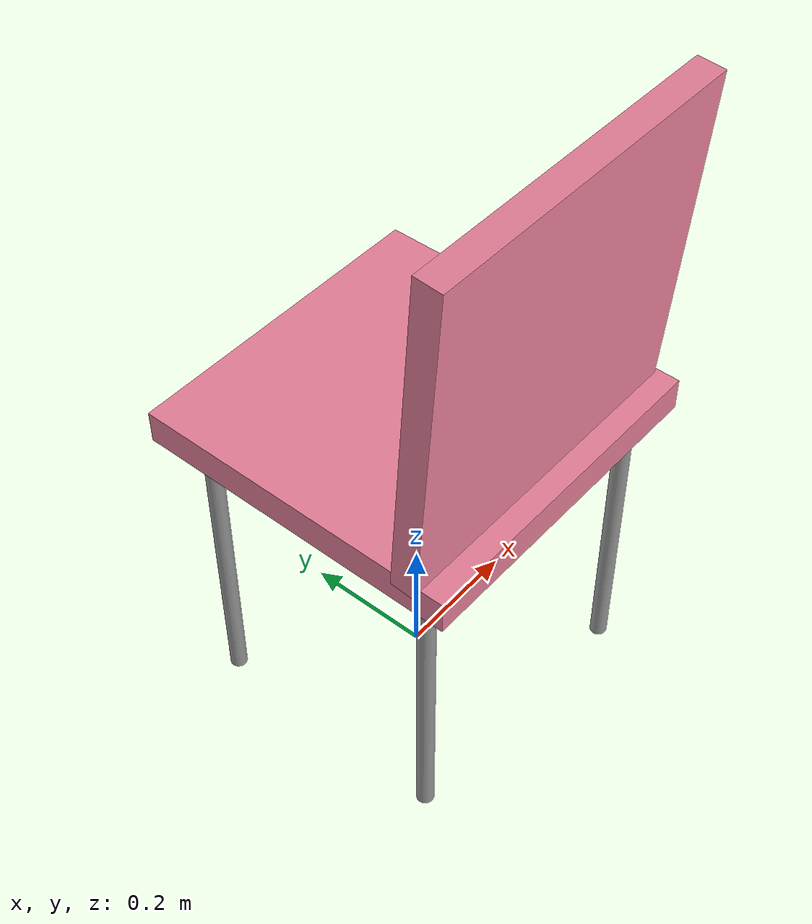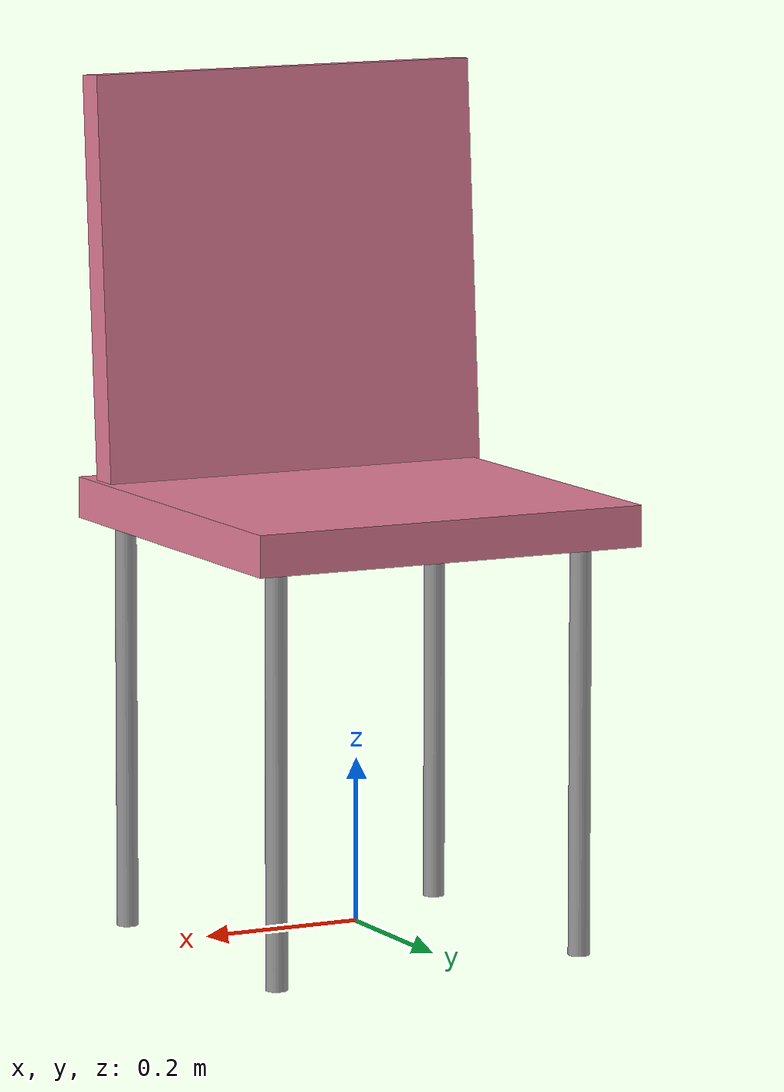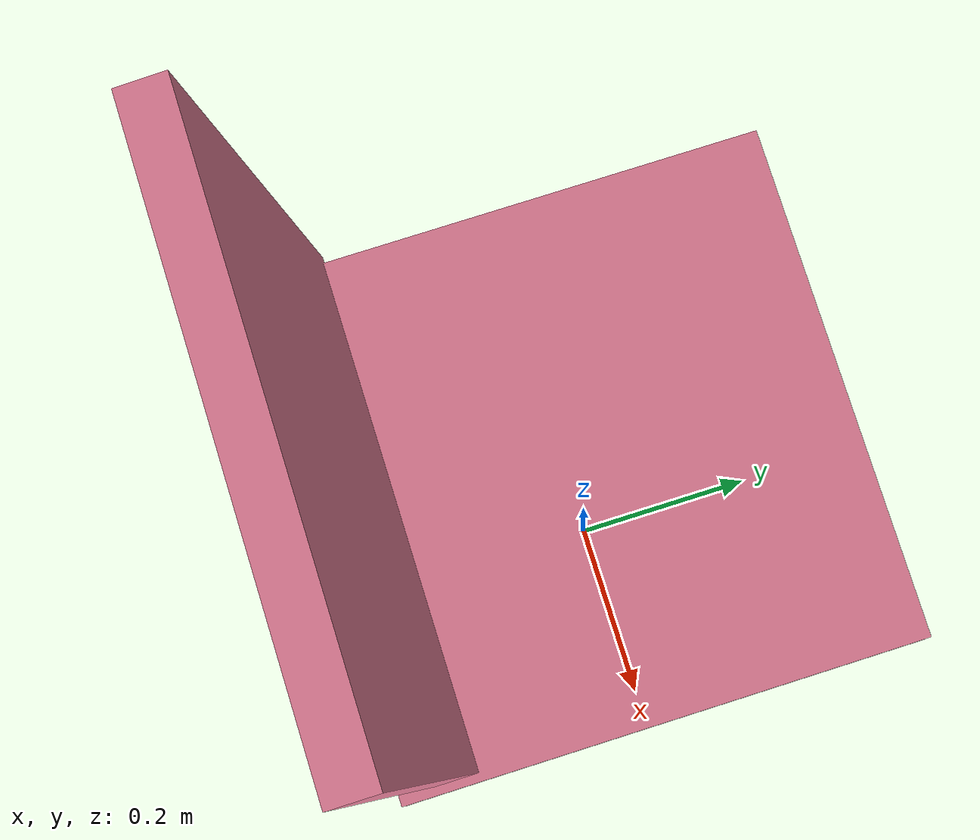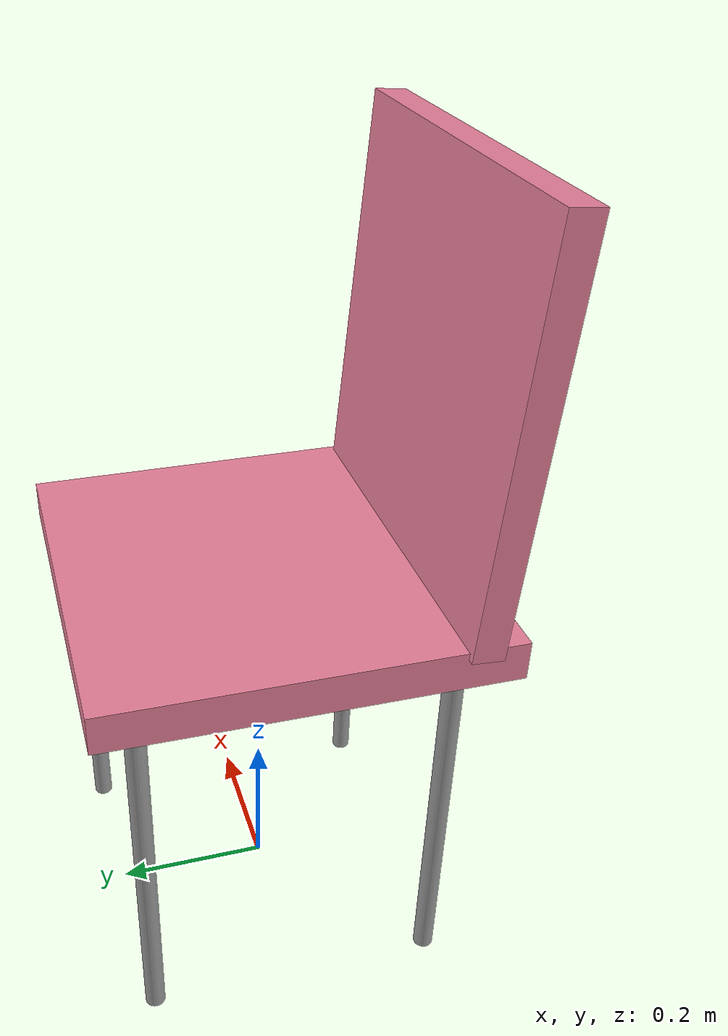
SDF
<?xml version='1.0'?>
<sdf version='1.7'>
  <model name='my_chair'>
    <link name='link'>
      <inertial>
        <mass>1</mass>
        <inertia>
          <ixx>0.166667</ixx>
          <ixy>0</ixy>
          <ixz>0</ixz>
          <iyy>0.166667</iyy>
          <iyz>0</iyz>
          <izz>0.166667</izz>
        </inertia>
        <pose>0 0 0 0 -0 0</pose>
      </inertial>
      <self_collide>0</self_collide>
      <enable_wind>0</enable_wind>
      <kinematic>0</kinematic>
      <pose>0 0 0 -0 -0 -0</pose>
      <gravity>0</gravity>
      <visual name='visual'>
        <geometry>
          <box>
            <size>0.5 0.5 0.05</size>
          </box>
        </geometry>
        <material>
          <script>
            <name>Gazebo/Grey</name>
            <uri>file://media/materials/scripts/gazebo.material</uri>
          </script>
          <shader type='pixel'>
            <normal_map>__default__</normal_map>
          </shader>
          <ambient>0.9 0.5 0.6 1</ambient>
          <diffuse>0.9 0.5 0.6 1</diffuse>
          <specular>0.01 0.01 0.01 1</specular>
          <emissive>0 0 0 1</emissive>
        </material>
        <pose>0 0 0.5 0 -0 0</pose>
        <transparency>0</transparency>
        <cast_shadows>1</cast_shadows>
      </visual>
      <collision name='collision'>
        <laser_retro>0</laser_retro>
        <max_contacts>10</max_contacts>
        <pose>0 0 0.5 0 -0 0</pose>
        <geometry>
          <box>
            <size>0.5 0.5 0.05</size>
          </box>
        </geometry>
        <surface>
          <friction>
            <ode>
              <mu>1</mu>
              <mu2>1</mu2>
              <fdir1>0 0 0</fdir1>
              <slip1>0</slip1>
              <slip2>0</slip2>
            </ode>
            <torsional>
              <coefficient>1</coefficient>
              <patch_radius>0</patch_radius>
              <surface_radius>0</surface_radius>
              <use_patch_radius>1</use_patch_radius>
              <ode>
                <slip>0</slip>
              </ode>
            </torsional>
          </friction>
          <bounce>
            <restitution_coefficient>0</restitution_coefficient>
            <threshold>1e+06</threshold>
          </bounce>
          <contact>
            <collide_without_contact>0</collide_without_contact>
            <collide_without_contact_bitmask>1</collide_without_contact_bitmask>
            <collide_bitmask>1</collide_bitmask>
            <ode>
              <soft_cfm>0</soft_cfm>
              <soft_erp>0.2</soft_erp>
              <kp>1e+13</kp>
              <kd>1</kd>
              <max_vel>0.01</max_vel>
              <min_depth>0</min_depth>
            </ode>
            <bullet>
              <split_impulse>1</split_impulse>
              <split_impulse_penetration_threshold>-0.01</split_impulse_penetration_threshold>
              <soft_cfm>0</soft_cfm>
              <soft_erp>0.2</soft_erp>
              <kp>1e+13</kp>
              <kd>1</kd>
            </bullet>
          </contact>
        </surface>
      </collision>
    </link>
    <link name='link_0'>
      <inertial>
        <mass>1</mass>
        <inertia>
          <ixx>0.145833</ixx>
          <ixy>0</ixy>
          <ixz>0</ixz>
          <iyy>0.145833</iyy>
          <iyz>0</iyz>
          <izz>0.125</izz>
        </inertia>
        <pose>0 0 0 0 -0 0</pose>
      </inertial>
      <pose>-0.200315 -0.184767 -0.272701 -0 -0 -0</pose>
      <gravity>0</gravity>
      <self_collide>0</self_collide>
      <kinematic>0</kinematic>
      <enable_wind>0</enable_wind>
      <visual name='visual'>
        <pose>0 0 0.5 0 -0 0</pose>
        <geometry>
          <cylinder>
            <radius>0.013</radius>
            <length>0.5</length>
          </cylinder>
        </geometry>
        <material>
          <lighting>1</lighting>
          <script>
            <uri>file://media/materials/scripts/gazebo.material</uri>
            <name>Gazebo/Grey</name>
          </script>
          <shader type='pixel'>
            <normal_map>__default__</normal_map>
          </shader>
          <ambient>0.3 0.3 0.3 1</ambient>
          <diffuse>0.7 0.7 0.7 1</diffuse>
          <specular>0.01 0.01 0.01 1</specular>
          <emissive>0 0 0 1</emissive>
        </material>
        <transparency>0</transparency>
        <cast_shadows>1</cast_shadows>
      </visual>
      <collision name='collision'>
        <laser_retro>0</laser_retro>
        <max_contacts>10</max_contacts>
        <pose>0 0 0.5 0 -0 0</pose>
        <geometry>
          <cylinder>
            <radius>0.013</radius>
            <length>0.5</length>
          </cylinder>
        </geometry>
        <surface>
          <friction>
            <ode>
              <mu>1</mu>
              <mu2>1</mu2>
              <fdir1>0 0 0</fdir1>
              <slip1>0</slip1>
              <slip2>0</slip2>
            </ode>
            <torsional>
              <coefficient>1</coefficient>
              <patch_radius>0</patch_radius>
              <surface_radius>0</surface_radius>
              <use_patch_radius>1</use_patch_radius>
              <ode>
                <slip>0</slip>
              </ode>
            </torsional>
          </friction>
          <bounce>
            <restitution_coefficient>0</restitution_coefficient>
            <threshold>1e+06</threshold>
          </bounce>
          <contact>
            <collide_without_contact>0</collide_without_contact>
            <collide_without_contact_bitmask>1</collide_without_contact_bitmask>
            <collide_bitmask>1</collide_bitmask>
            <ode>
              <soft_cfm>0</soft_cfm>
              <soft_erp>0.2</soft_erp>
              <kp>1e+13</kp>
              <kd>1</kd>
              <max_vel>0.01</max_vel>
              <min_depth>0</min_depth>
            </ode>
            <bullet>
              <split_impulse>1</split_impulse>
              <split_impulse_penetration_threshold>-0.01</split_impulse_penetration_threshold>
              <soft_cfm>0</soft_cfm>
              <soft_erp>0.2</soft_erp>
              <kp>1e+13</kp>
              <kd>1</kd>
            </bullet>
          </contact>
        </surface>
      </collision>
    </link>
    <link name='link_0_clone'>
      <inertial>
        <mass>1</mass>
        <inertia>
          <ixx>0.145833</ixx>
          <ixy>0</ixy>
          <ixz>0</ixz>
          <iyy>0.145833</iyy>
          <iyz>0</iyz>
          <izz>0.125</izz>
        </inertia>
        <pose>0 0 0 0 -0 0</pose>
      </inertial>
      <pose>-0.198839 0.194466 -0.272701 -0 -0 -0</pose>
      <gravity>0</gravity>
      <self_collide>0</self_collide>
      <kinematic>0</kinematic>
      <enable_wind>0</enable_wind>
      <visual name='visual'>
        <pose>0 0 0.5 0 -0 0</pose>
        <geometry>
          <cylinder>
            <radius>0.013</radius>
            <length>0.5</length>
          </cylinder>
        </geometry>
        <material>
          <lighting>1</lighting>
          <script>
            <uri>file://media/materials/scripts/gazebo.material</uri>
            <name>Gazebo/Grey</name>
          </script>
          <shader type='pixel'>
            <normal_map>__default__</normal_map>
          </shader>
          <ambient>0.3 0.3 0.3 1</ambient>
          <diffuse>0.7 0.7 0.7 1</diffuse>
          <specular>0.01 0.01 0.01 1</specular>
          <emissive>0 0 0 1</emissive>
        </material>
        <transparency>0</transparency>
        <cast_shadows>1</cast_shadows>
      </visual>
      <collision name='collision'>
        <laser_retro>0</laser_retro>
        <max_contacts>10</max_contacts>
        <pose>0 0 0.5 0 -0 0</pose>
        <geometry>
          <cylinder>
            <radius>0.013</radius>
            <length>0.5</length>
          </cylinder>
        </geometry>
        <surface>
          <friction>
            <ode>
              <mu>1</mu>
              <mu2>1</mu2>
              <fdir1>0 0 0</fdir1>
              <slip1>0</slip1>
              <slip2>0</slip2>
            </ode>
            <torsional>
              <coefficient>1</coefficient>
              <patch_radius>0</patch_radius>
              <surface_radius>0</surface_radius>
              <use_patch_radius>1</use_patch_radius>
              <ode>
                <slip>0</slip>
              </ode>
            </torsional>
          </friction>
          <bounce>
            <restitution_coefficient>0</restitution_coefficient>
            <threshold>1e+06</threshold>
          </bounce>
          <contact>
            <collide_without_contact>0</collide_without_contact>
            <collide_without_contact_bitmask>1</collide_without_contact_bitmask>
            <collide_bitmask>1</collide_bitmask>
            <ode>
              <soft_cfm>0</soft_cfm>
              <soft_erp>0.2</soft_erp>
              <kp>1e+13</kp>
              <kd>1</kd>
              <max_vel>0.01</max_vel>
              <min_depth>0</min_depth>
            </ode>
            <bullet>
              <split_impulse>1</split_impulse>
              <split_impulse_penetration_threshold>-0.01</split_impulse_penetration_threshold>
              <soft_cfm>0</soft_cfm>
              <soft_erp>0.2</soft_erp>
              <kp>1e+13</kp>
              <kd>1</kd>
            </bullet>
          </contact>
        </surface>
      </collision>
    </link>
    <link name='link_0_clone_0'>
      <inertial>
        <mass>1</mass>
        <inertia>
          <ixx>0.145833</ixx>
          <ixy>0</ixy>
          <ixz>0</ixz>
          <iyy>0.145833</iyy>
          <iyz>0</iyz>
          <izz>0.125</izz>
        </inertia>
        <pose>0 0 0 0 -0 0</pose>
      </inertial>
      <pose>0.211914 -0.198881 -0.272701 -0 -0 -0</pose>
      <gravity>0</gravity>
      <self_collide>0</self_collide>
      <kinematic>0</kinematic>
      <enable_wind>0</enable_wind>
      <visual name='visual'>
        <pose>0 0 0.5 0 -0 0</pose>
        <geometry>
          <cylinder>
            <radius>0.013</radius>
            <length>0.5</length>
          </cylinder>
        </geometry>
        <material>
          <lighting>1</lighting>
          <script>
            <uri>file://media/materials/scripts/gazebo.material</uri>
            <name>Gazebo/Grey</name>
          </script>
          <shader type='pixel'>
            <normal_map>__default__</normal_map>
          </shader>
          <ambient>0.3 0.3 0.3 1</ambient>
          <diffuse>0.7 0.7 0.7 1</diffuse>
          <specular>0.01 0.01 0.01 1</specular>
          <emissive>0 0 0 1</emissive>
        </material>
        <transparency>0</transparency>
        <cast_shadows>1</cast_shadows>
      </visual>
      <collision name='collision'>
        <laser_retro>0</laser_retro>
        <max_contacts>10</max_contacts>
        <pose>0 0 0.5 0 -0 0</pose>
        <geometry>
          <cylinder>
            <radius>0.013</radius>
            <length>0.5</length>
          </cylinder>
        </geometry>
        <surface>
          <friction>
            <ode>
              <mu>1</mu>
              <mu2>1</mu2>
              <fdir1>0 0 0</fdir1>
              <slip1>0</slip1>
              <slip2>0</slip2>
            </ode>
            <torsional>
              <coefficient>1</coefficient>
              <patch_radius>0</patch_radius>
              <surface_radius>0</surface_radius>
              <use_patch_radius>1</use_patch_radius>
              <ode>
                <slip>0</slip>
              </ode>
            </torsional>
          </friction>
          <bounce>
            <restitution_coefficient>0</restitution_coefficient>
            <threshold>1e+06</threshold>
          </bounce>
          <contact>
            <collide_without_contact>0</collide_without_contact>
            <collide_without_contact_bitmask>1</collide_without_contact_bitmask>
            <collide_bitmask>1</collide_bitmask>
            <ode>
              <soft_cfm>0</soft_cfm>
              <soft_erp>0.2</soft_erp>
              <kp>1e+13</kp>
              <kd>1</kd>
              <max_vel>0.01</max_vel>
              <min_depth>0</min_depth>
            </ode>
            <bullet>
              <split_impulse>1</split_impulse>
              <split_impulse_penetration_threshold>-0.01</split_impulse_penetration_threshold>
              <soft_cfm>0</soft_cfm>
              <soft_erp>0.2</soft_erp>
              <kp>1e+13</kp>
              <kd>1</kd>
            </bullet>
          </contact>
        </surface>
      </collision>
    </link>
    <link name='link_0_clone_1'>
      <inertial>
        <mass>1</mass>
        <inertia>
          <ixx>0.145833</ixx>
          <ixy>0</ixy>
          <ixz>0</ixz>
          <iyy>0.145833</iyy>
          <iyz>0</iyz>
          <izz>0.125</izz>
        </inertia>
        <pose>0 0 0 0 -0 0</pose>
      </inertial>
      <pose>0.207422 0.203987 -0.272701 -0 -0 -0</pose>
      <gravity>0</gravity>
      <self_collide>0</self_collide>
      <kinematic>0</kinematic>
      <enable_wind>0</enable_wind>
      <visual name='visual'>
        <pose>0 0 0.5 0 -0 0</pose>
        <geometry>
          <cylinder>
            <radius>0.013</radius>
            <length>0.5</length>
          </cylinder>
        </geometry>
        <material>
          <lighting>1</lighting>
          <script>
            <uri>file://media/materials/scripts/gazebo.material</uri>
            <name>Gazebo/Grey</name>
          </script>
          <shader type='pixel'>
            <normal_map>__default__</normal_map>
          </shader>
          <ambient>0.3 0.3 0.3 1</ambient>
          <diffuse>0.7 0.7 0.7 1</diffuse>
          <specular>0.01 0.01 0.01 1</specular>
          <emissive>0 0 0 1</emissive>
        </material>
        <transparency>0</transparency>
        <cast_shadows>1</cast_shadows>
      </visual>
      <collision name='collision'>
        <laser_retro>0</laser_retro>
        <max_contacts>10</max_contacts>
        <pose>0 0 0.5 0 -0 0</pose>
        <geometry>
          <cylinder>
            <radius>0.013</radius>
            <length>0.5</length>
          </cylinder>
        </geometry>
        <surface>
          <friction>
            <ode>
              <mu>1</mu>
              <mu2>1</mu2>
              <fdir1>0 0 0</fdir1>
              <slip1>0</slip1>
              <slip2>0</slip2>
            </ode>
            <torsional>
              <coefficient>1</coefficient>
              <patch_radius>0</patch_radius>
              <surface_radius>0</surface_radius>
              <use_patch_radius>1</use_patch_radius>
              <ode>
                <slip>0</slip>
              </ode>
            </torsional>
          </friction>
          <bounce>
            <restitution_coefficient>0</restitution_coefficient>
            <threshold>1e+06</threshold>
          </bounce>
          <contact>
            <collide_without_contact>0</collide_without_contact>
            <collide_without_contact_bitmask>1</collide_without_contact_bitmask>
            <collide_bitmask>1</collide_bitmask>
            <ode>
              <soft_cfm>0</soft_cfm>
              <soft_erp>0.2</soft_erp>
              <kp>1e+13</kp>
              <kd>1</kd>
              <max_vel>0.01</max_vel>
              <min_depth>0</min_depth>
            </ode>
            <bullet>
              <split_impulse>1</split_impulse>
              <split_impulse_penetration_threshold>-0.01</split_impulse_penetration_threshold>
              <soft_cfm>0</soft_cfm>
              <soft_erp>0.2</soft_erp>
              <kp>1e+13</kp>
              <kd>1</kd>
            </bullet>
          </contact>
        </surface>
      </collision>
    </link>
    <link name='link_clone'>
      <inertial>
        <mass>1</mass>
        <inertia>
          <ixx>0.166667</ixx>
          <ixy>0</ixy>
          <ixz>0</ixz>
          <iyy>0.166667</iyy>
          <iyz>0</iyz>
          <izz>0.166667</izz>
        </inertia>
        <pose>0 0 0 0 -0 0</pose>
      </inertial>
      <self_collide>0</self_collide>
      <enable_wind>0</enable_wind>
      <kinematic>0</kinematic>
      <pose>-0.00806 -0.212496 0.264135 -0 -0 -0</pose>
      <gravity>0</gravity>
      <visual name='visual'>
        <geometry>
          <box>
            <size>0.5 0.5 0.04</size>
          </box>
        </geometry>
        <material>
          <script>
            <name>Gazebo/Grey</name>
            <uri>file://media/materials/scripts/gazebo.material</uri>
          </script>
          <shader type='pixel'>
            <normal_map>__default__</normal_map>
          </shader>
          <ambient>0.9 0.5 0.6 1</ambient>
          <diffuse>0.9 0.5 0.6 1</diffuse>
          <specular>0.01 0.01 0.01 1</specular>
          <emissive>0 0 0 1</emissive>
        </material>
        <pose>0 0 0.5 -1.5 0 0</pose>
        <transparency>0</transparency>
        <cast_shadows>1</cast_shadows>
      </visual>
      <collision name='collision'>
        <laser_retro>0</laser_retro>
        <max_contacts>10</max_contacts>
        <pose>0 0 0.5 -1.5 0 0</pose>
        <geometry>
          <box>
            <size>0.5 0.5 0.04</size>
          </box>
        </geometry>
        <surface>
          <friction>
            <ode>
              <mu>1</mu>
              <mu2>1</mu2>
              <fdir1>0 0 0</fdir1>
              <slip1>0</slip1>
              <slip2>0</slip2>
            </ode>
            <torsional>
              <coefficient>1</coefficient>
              <patch_radius>0</patch_radius>
              <surface_radius>0</surface_radius>
              <use_patch_radius>1</use_patch_radius>
              <ode>
                <slip>0</slip>
              </ode>
            </torsional>
          </friction>
          <bounce>
            <restitution_coefficient>0</restitution_coefficient>
            <threshold>1e+06</threshold>
          </bounce>
          <contact>
            <collide_without_contact>0</collide_without_contact>
            <collide_without_contact_bitmask>1</collide_without_contact_bitmask>
            <collide_bitmask>1</collide_bitmask>
            <ode>
              <soft_cfm>0</soft_cfm>
              <soft_erp>0.2</soft_erp>
              <kp>1e+13</kp>
              <kd>1</kd>
              <max_vel>0.01</max_vel>
              <min_depth>0</min_depth>
            </ode>
            <bullet>
              <split_impulse>1</split_impulse>
              <split_impulse_penetration_threshold>-0.01</split_impulse_penetration_threshold>
              <soft_cfm>0</soft_cfm>
              <soft_erp>0.2</soft_erp>
              <kp>1e+13</kp>
              <kd>1</kd>
            </bullet>
          </contact>
        </surface>
      </collision>
    </link>
    <static>1</static>
    <allow_auto_disable>1</allow_auto_disable>
  </model>
</sdf>
